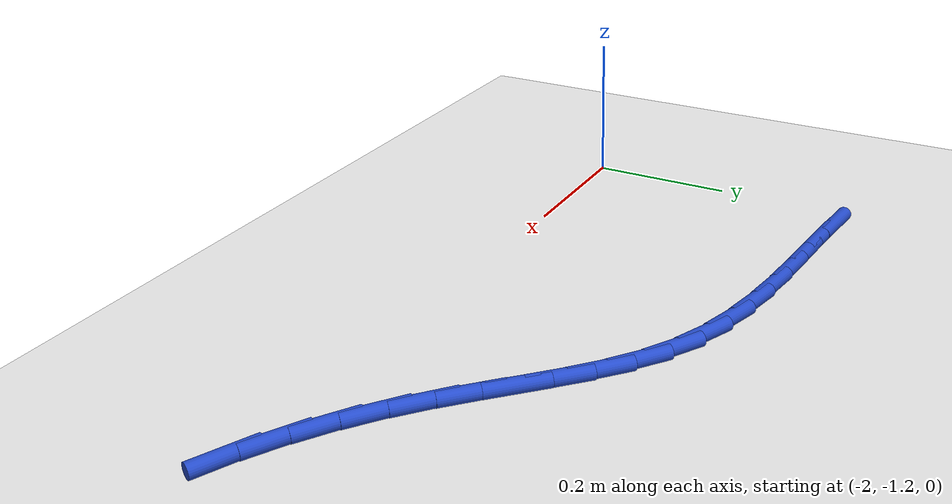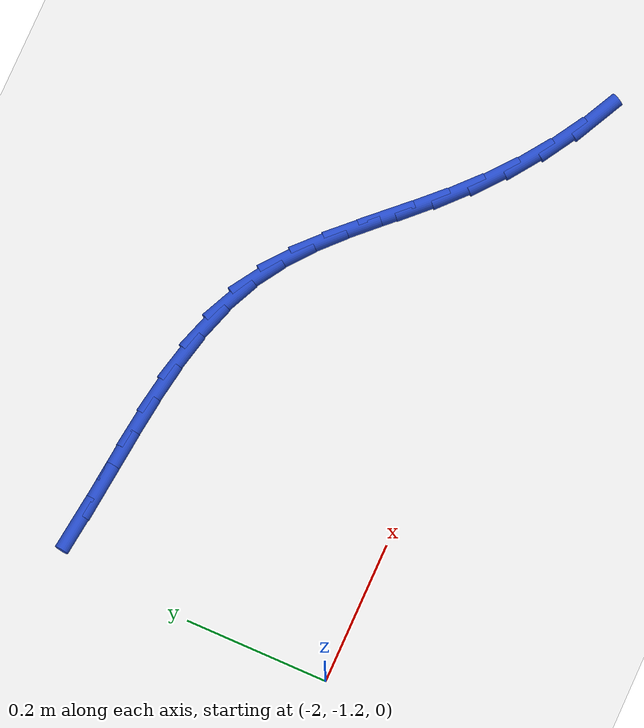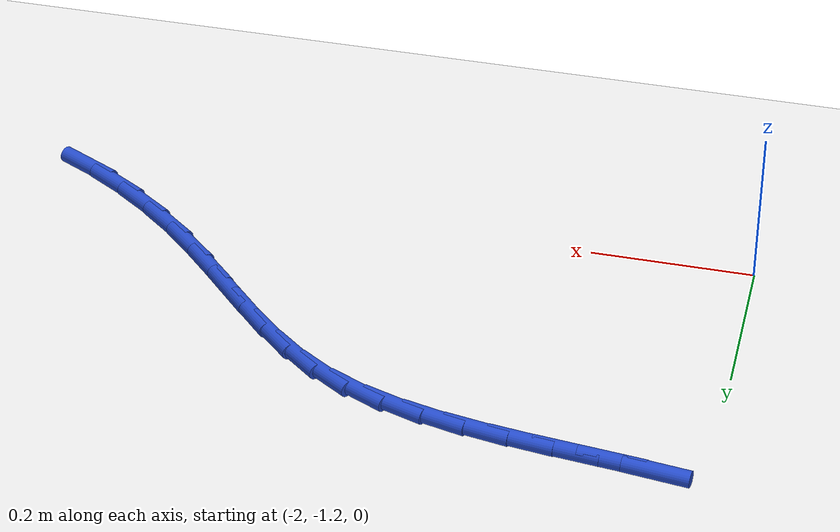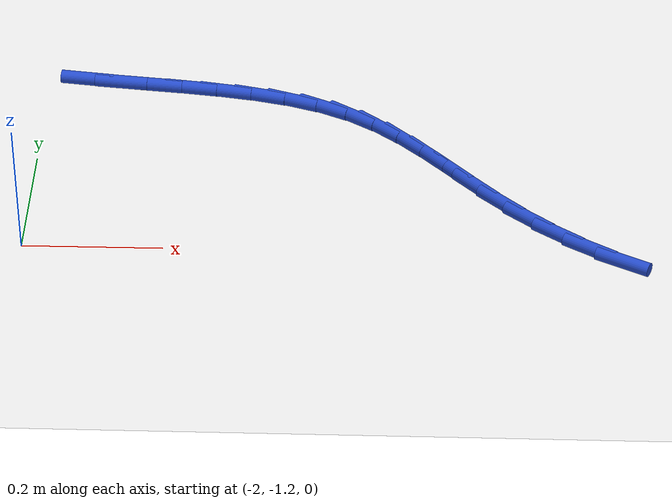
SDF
<sdf version="1.6">
 <world name="default">
  <model name="ground_plane">
   <static>1</static>
   <link name="link">
    <collision name="collision">
     <geometry><plane><normal>0 0 1</normal><size>100 100</size></plane></geometry>
     <surface><friction><ode><mu>100</mu><mu2>50</mu2></ode></friction></surface>
    </collision>
    <visual name="visual">
     <cast_shadows>0</cast_shadows>
     <geometry><plane><normal>0 0 1</normal><size>100 100</size></plane></geometry>
     <material>
      <script><uri>file://media/materials/scripts/gazebo.material</uri><name>Gazebo/WhiteGlow</name></script>
     </material>
    </visual>
   </link>
  </model>
  <model name="line">
   <link name="link_94">
    <pose>-1.943268962300764 -0.8136108996449618 0.01 0 1.57 -0.12375764119854486</pose>
    <collision name="collision">
     <geometry><cylinder><radius>0.01</radius><length>0.08</length></cylinder></geometry>
    </collision>
    <visual name="visual">
     <material>
      <script><name>Gazebo/Blue</name><uri>file://media/materials/scripts/gazebo.material</uri></script>
     </material>
     <geometry><cylinder><radius>0.01</radius><length>0.08</length></cylinder></geometry>
    </visual>
   </link>
   <link name="link_95">
    <pose>-1.8913784430262217 -0.8200657355978724 0.01 0 1.57 -0.10591470711519371</pose>
    <collision name="collision">
     <geometry><cylinder><radius>0.01</radius><length>0.08</length></cylinder></geometry>
    </collision>
    <visual name="visual">
     <material>
      <script><name>Gazebo/Blue</name><uri>file://media/materials/scripts/gazebo.material</uri></script>
     </material>
     <geometry><cylinder><radius>0.01</radius><length>0.08</length></cylinder></geometry>
    </visual>
   </link>
   <link name="link_96">
    <pose>-1.8384914145091933 -0.8256882899382985 0.01 0 1.57 -0.10740650272417064</pose>
    <collision name="collision">
     <geometry><cylinder><radius>0.01</radius><length>0.08</length></cylinder></geometry>
    </collision>
    <visual name="visual">
     <material>
      <script><name>Gazebo/Blue</name><uri>file://media/materials/scripts/gazebo.material</uri></script>
     </material>
     <geometry><cylinder><radius>0.01</radius><length>0.08</length></cylinder></geometry>
    </visual>
   </link>
   <link name="link_97">
    <pose>-1.785328440654912 -0.8314203981716866 0.01 0 1.57 -0.12797111893571222</pose>
    <collision name="collision">
     <geometry><cylinder><radius>0.01</radius><length>0.08</length></cylinder></geometry>
    </collision>
    <visual name="visual">
     <material>
      <script><name>Gazebo/Blue</name><uri>file://media/materials/scripts/gazebo.material</uri></script>
     </material>
     <geometry><cylinder><radius>0.01</radius><length>0.08</length></cylinder></geometry>
    </visual>
   </link>
   <link name="link_98">
    <pose>-1.7326100853686186 -0.8382038958034844 0.01 0 1.57 -0.16862925801716133</pose>
    <collision name="collision">
     <geometry><cylinder><radius>0.01</radius><length>0.08</length></cylinder></geometry>
    </collision>
    <visual name="visual">
     <material>
      <script><name>Gazebo/Blue</name><uri>file://media/materials/scripts/gazebo.material</uri></script>
     </material>
     <geometry><cylinder><radius>0.01</radius><length>0.08</length></cylinder></geometry>
    </visual>
   </link>
   <link name="link_99">
    <pose>-1.6810569125555468 -0.8469806183391386 0.01 0 1.57 -0.23157384436197093</pose>
    <collision name="collision">
     <geometry><cylinder><radius>0.01</radius><length>0.08</length></cylinder></geometry>
    </collision>
    <visual name="visual">
     <material>
      <script><name>Gazebo/Blue</name><uri>file://media/materials/scripts/gazebo.material</uri></script>
     </material>
     <geometry><cylinder><radius>0.01</radius><length>0.08</length></cylinder></geometry>
    </visual>
   </link>
   <link name="link_100">
    <pose>-1.6313894861209364 -0.8586924012840967 0.01 0 1.57 -0.3198683358122298</pose>
    <collision name="collision">
     <geometry><cylinder><radius>0.01</radius><length>0.08</length></cylinder></geometry>
    </collision>
    <visual name="visual">
     <material>
      <script><name>Gazebo/Blue</name><uri>file://media/materials/scripts/gazebo.material</uri></script>
     </material>
     <geometry><cylinder><radius>0.01</radius><length>0.08</length></cylinder></geometry>
    </visual>
   </link>
   <link name="link_101">
    <pose>-1.5843283699700232 -0.8742810801438052 0.01 0 1.57 -0.4365897497148407</pose>
    <collision name="collision">
     <geometry><cylinder><radius>0.01</radius><length>0.08</length></cylinder></geometry>
    </collision>
    <visual name="visual">
     <material>
      <script><name>Gazebo/Blue</name><uri>file://media/materials/scripts/gazebo.material</uri></script>
     </material>
     <geometry><cylinder><radius>0.01</radius><length>0.08</length></cylinder></geometry>
    </visual>
   </link>
   <link name="link_102">
    <pose>-1.5405940735235353 -0.8946884261087662 0.01 0 1.57 -0.5716963963194849</pose>
    <collision name="collision">
     <geometry><cylinder><radius>0.01</radius><length>0.08</length></cylinder></geometry>
    </collision>
    <visual name="visual">
     <material>
      <script><name>Gazebo/Blue</name><uri>file://media/materials/scripts/gazebo.material</uri></script>
     </material>
     <geometry><cylinder><radius>0.01</radius><length>0.08</length></cylinder></geometry>
    </visual>
   </link>
   <link name="link_103">
    <pose>-1.5005591506036566 -0.9204454744422254 0.01 0 1.57 -0.6835866678400516</pose>
    <collision name="collision">
     <geometry><cylinder><radius>0.01</radius><length>0.08</length></cylinder></geometry>
    </collision>
    <visual name="visual">
     <material>
      <script><name>Gazebo/Blue</name><uri>file://media/materials/scripts/gazebo.material</uri></script>
     </material>
     <geometry><cylinder><radius>0.01</radius><length>0.08</length></cylinder></geometry>
    </visual>
   </link>
   <link name="link_104">
    <pose>-1.4634222707466538 -0.9506975765653352 0.01 0 1.57 -0.7609159240017896</pose>
    <collision name="collision">
     <geometry><cylinder><radius>0.01</radius><length>0.08</length></cylinder></geometry>
    </collision>
    <visual name="visual">
     <material>
      <script><name>Gazebo/Blue</name><uri>file://media/materials/scripts/gazebo.material</uri></script>
     </material>
     <geometry><cylinder><radius>0.01</radius><length>0.08</length></cylinder></geometry>
    </visual>
   </link>
   <link name="link_105">
    <pose>-1.4281348073525284 -0.9842981690450003 0.01 0 1.57 -0.804116434786083</pose>
    <collision name="collision">
     <geometry><cylinder><radius>0.01</radius><length>0.08</length></cylinder></geometry>
    </collision>
    <visual name="visual">
     <material>
      <script><name>Gazebo/Blue</name><uri>file://media/materials/scripts/gazebo.material</uri></script>
     </material>
     <geometry><cylinder><radius>0.01</radius><length>0.08</length></cylinder></geometry>
    </visual>
   </link>
   <link name="link_106">
    <pose>-1.3936481338212847 -1.0201006884481225 0.01 0 1.57 -0.8150486645049317</pose>
    <collision name="collision">
     <geometry><cylinder><radius>0.01</radius><length>0.08</length></cylinder></geometry>
    </collision>
    <visual name="visual">
     <material>
      <script><name>Gazebo/Blue</name><uri>file://media/materials/scripts/gazebo.material</uri></script>
     </material>
     <geometry><cylinder><radius>0.01</radius><length>0.08</length></cylinder></geometry>
    </visual>
   </link>
   <link name="link_107">
    <pose>-1.358913623552924 -1.0569585713416056 0.01 0 1.57 -0.7955040422705273</pose>
    <collision name="collision">
     <geometry><cylinder><radius>0.01</radius><length>0.08</length></cylinder></geometry>
    </collision>
    <visual name="visual">
     <material>
      <script><name>Gazebo/Blue</name><uri>file://media/materials/scripts/gazebo.material</uri></script>
     </material>
     <geometry><cylinder><radius>0.01</radius><length>0.08</length></cylinder></geometry>
    </visual>
   </link>
   <link name="link_108">
    <pose>-1.3228826499474502 -1.0937252542923523 0.01 0 1.57 -0.7471180232056682</pose>
    <collision name="collision">
     <geometry><cylinder><radius>0.01</radius><length>0.08</length></cylinder></geometry>
    </collision>
    <visual name="visual">
     <material>
      <script><name>Gazebo/Blue</name><uri>file://media/materials/scripts/gazebo.material</uri></script>
     </material>
     <geometry><cylinder><radius>0.01</radius><length>0.08</length></cylinder></geometry>
    </visual>
   </link>
   <link name="link_109">
    <pose>-1.2845192476773437 -1.1292584999759845 0.01 0 1.57 -0.681890503015726</pose>
    <collision name="collision">
     <geometry><cylinder><radius>0.01</radius><length>0.08</length></cylinder></geometry>
    </collision>
    <visual name="visual">
     <material>
      <script><name>Gazebo/Blue</name><uri>file://media/materials/scripts/gazebo.material</uri></script>
     </material>
     <geometry><cylinder><radius>0.01</radius><length>0.08</length></cylinder></geometry>
    </visual>
   </link>
   <link name="link_110">
    <pose>-1.2434116584359065 -1.1626293503763865 0.01 0 1.57 -0.6142635597149986</pose>
    <collision name="collision">
     <geometry><cylinder><radius>0.01</radius><length>0.08</length></cylinder></geometry>
    </collision>
    <visual name="visual">
     <material>
      <script><name>Gazebo/Blue</name><uri>file://media/materials/scripts/gazebo.material</uri></script>
     </material>
     <geometry><cylinder><radius>0.01</radius><length>0.08</length></cylinder></geometry>
    </visual>
   </link>
   <link name="link_111">
    <pose>-1.200044879299618 -1.193215251220788 0.01 0 1.57 -0.5430124513550487</pose>
    <collision name="collision">
     <geometry><cylinder><radius>0.01</radius><length>0.08</length></cylinder></geometry>
    </collision>
    <visual name="visual">
     <material>
      <script><name>Gazebo/Blue</name><uri>file://media/materials/scripts/gazebo.material</uri></script>
     </material>
     <geometry><cylinder><radius>0.01</radius><length>0.08</length></cylinder></geometry>
    </visual>
   </link>
   <link name="link_112">
    <pose>-1.1549733312062982 -1.2204173690095426 0.01 0 1.57 -0.46552466171926715</pose>
    <collision name="collision">
     <geometry><cylinder><radius>0.01</radius><length>0.08</length></cylinder></geometry>
    </collision>
    <visual name="visual">
     <material>
      <script><name>Gazebo/Blue</name><uri>file://media/materials/scripts/gazebo.material</uri></script>
     </material>
     <geometry><cylinder><radius>0.01</radius><length>0.08</length></cylinder></geometry>
    </visual>
   </link>
  </model>
 </world>
</sdf>
